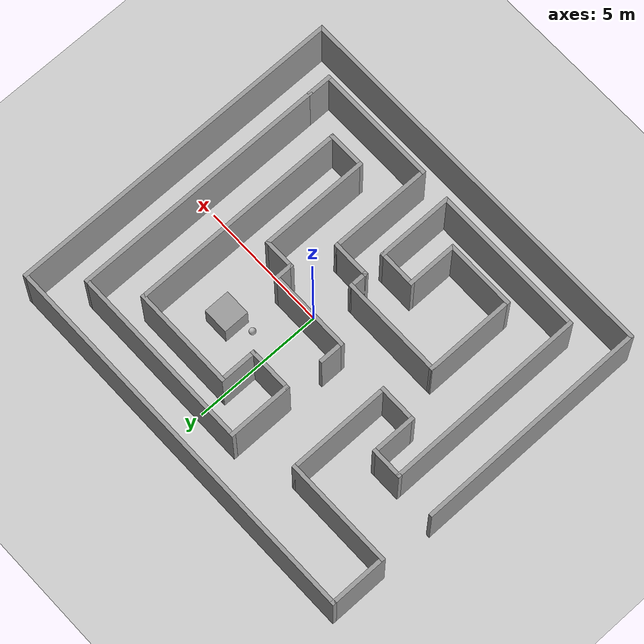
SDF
<sdf version="1.7">
 <world name="default">
  <light name="sun" type="directional">
   <pose>0 0 10 0 -0 0</pose>
   <diffuse>0.8 0.8 0.8 1</diffuse>
   <specular>0.2 0.2 0.2 1</specular>
   <attenuation>
    <range>1000</range>
    <constant>0.9</constant>
    <linear>0.01</linear>
    <quadratic>0.001</quadratic>
   </attenuation>
   <direction>-0.5 0.1 -0.9</direction>
   <spot><inner_angle>0</inner_angle><outer_angle>0</outer_angle><falloff>0</falloff></spot>
  </light>
  <model name="ground_plane">
   <static>1</static>
   <link name="link">
    <collision name="collision">
     <geometry><plane><normal>0 0 1</normal><size>100 100</size></plane></geometry>
     <surface>
      <contact><collide_bitmask>65535</collide_bitmask></contact>
      <friction><ode><mu>100</mu><mu2>50</mu2></ode></friction>
     </surface>
    </collision>
    <visual name="visual">
     <cast_shadows>0</cast_shadows>
     <geometry><plane><normal>0 0 1</normal><size>100 100</size></plane></geometry>
     <material>
      <script><uri>file://media/materials/scripts/gazebo.material</uri><name>Gazebo/Grey</name></script>
     </material>
    </visual>
   </link>
  </model>
  <gravity>0 0 -9.8</gravity>
  <magnetic_field>6e-06 2.3e-05 -4.2e-05</magnetic_field>
  <atmosphere type="adiabatic"/>
  <physics type="ode">
   <max_step_size>0.001</max_step_size>
   <real_time_factor>1</real_time_factor>
   <real_time_update_rate>1000</real_time_update_rate>
  </physics>
  <scene><ambient>0.4 0.4 0.4 1</ambient><background>0.7 0.7 0.7 1</background><shadows>1</shadows></scene>
  <spherical_coordinates>
   <surface_model>EARTH_WGS84</surface_model>
   <latitude_deg>0</latitude_deg>
   <longitude_deg>0</longitude_deg>
   <elevation>0</elevation>
   <heading_deg>0</heading_deg>
  </spherical_coordinates>
  <model name="test">
   <pose>-0.614659 -0.052239 0 0 -0 0</pose>
   <link name="Wall_10">
    <collision name="Wall_10_Collision">
     <geometry><box><size>4 0.15 2.5</size></box></geometry>
     <pose>0 0 1.25 0 -0 0</pose>
    </collision>
    <visual name="Wall_10_Visual">
     <pose>0 0 1.25 0 -0 0</pose>
     <geometry><box><size>4 0.15 2.5</size></box></geometry>
     <material>
      <script><uri>file://media/materials/scripts/gazebo.material</uri><name>Gazebo/Grey</name></script>
      <ambient>1 1 1 1</ambient>
     </material>
     <meta><layer>0</layer></meta>
    </visual>
    <pose>-3.325 2.525 0 0 -0 -1.5708</pose>
   </link>
   <link name="Wall_11">
    <collision name="Wall_11_Collision">
     <geometry><box><size>1.5 0.15 2.5</size></box></geometry>
     <pose>0 0 1.25 0 -0 0</pose>
    </collision>
    <visual name="Wall_11_Visual">
     <pose>0 0 1.25 0 -0 0</pose>
     <geometry><box><size>1.5 0.15 2.5</size></box></geometry>
     <material>
      <script><uri>file://media/materials/scripts/gazebo.material</uri><name>Gazebo/Grey</name></script>
      <ambient>1 1 1 1</ambient>
     </material>
     <meta><layer>0</layer></meta>
    </visual>
    <pose>-4 0.6 0 0 -0 3.14159</pose>
   </link>
   <link name="Wall_12">
    <collision name="Wall_12_Collision">
     <geometry><box><size>1.75 0.15 2.5</size></box></geometry>
     <pose>0 0 1.25 0 -0 0</pose>
    </collision>
    <visual name="Wall_12_Visual">
     <pose>0 0 1.25 0 -0 0</pose>
     <geometry><box><size>1.75 0.15 2.5</size></box></geometry>
     <material>
      <script><uri>file://media/materials/scripts/gazebo.material</uri><name>Gazebo/Grey</name></script>
      <ambient>1 1 1 1</ambient>
     </material>
     <meta><layer>0</layer></meta>
    </visual>
    <pose>-4.675 1.4 0 0 -0 1.5708</pose>
   </link>
   <link name="Wall_13">
    <collision name="Wall_13_Collision">
     <geometry><box><size>1.25 0.15 2.5</size></box></geometry>
     <pose>0 0 1.25 0 -0 0</pose>
    </collision>
    <visual name="Wall_13_Visual">
     <pose>0 0 1.25 0 -0 0</pose>
     <geometry><box><size>1.25 0.15 2.5</size></box></geometry>
     <material>
      <script><uri>file://media/materials/scripts/gazebo.material</uri><name>Gazebo/Grey</name></script>
      <ambient>1 1 1 1</ambient>
     </material>
     <meta><layer>0</layer></meta>
    </visual>
    <pose>-5.225 2.2 0 0 -0 3.14159</pose>
   </link>
   <link name="Wall_14">
    <collision name="Wall_14_Collision">
     <geometry><box><size>7.75 0.15 2.5</size></box></geometry>
     <pose>0 0 1.25 0 -0 0</pose>
    </collision>
    <visual name="Wall_14_Visual">
     <pose>0 0 1.25 0 -0 0</pose>
     <geometry><box><size>7.75 0.15 2.5</size></box></geometry>
     <material>
      <script><uri>file://media/materials/scripts/gazebo.material</uri><name>Gazebo/Grey</name></script>
      <ambient>1 1 1 1</ambient>
     </material>
     <meta><layer>0</layer></meta>
    </visual>
    <pose>-5.775 -1.6 0 0 -0 -1.5708</pose>
   </link>
   <link name="Wall_15">
    <collision name="Wall_15_Collision">
     <geometry><box><size>6 0.15 2.5</size></box></geometry>
     <pose>0 0 1.25 0 -0 0</pose>
    </collision>
    <visual name="Wall_15_Visual">
     <pose>0 0 1.25 0 -0 0</pose>
     <geometry><box><size>6 0.15 2.5</size></box></geometry>
     <material>
      <script><uri>file://media/materials/scripts/gazebo.material</uri><name>Gazebo/Grey</name></script>
      <ambient>1 1 1 1</ambient>
     </material>
     <meta><layer>0</layer></meta>
    </visual>
    <pose>-2.85 -5.4 0 0 -0 0</pose>
   </link>
   <link name="Wall_16">
    <collision name="Wall_16_Collision">
     <geometry><box><size>3 0.15 2.5</size></box></geometry>
     <pose>0 0 1.25 0 -0 0</pose>
    </collision>
    <visual name="Wall_16_Visual">
     <pose>0 0 1.25 0 -0 0</pose>
     <geometry><box><size>3 0.15 2.5</size></box></geometry>
     <material>
      <script><uri>file://media/materials/scripts/gazebo.material</uri><name>Gazebo/Grey</name></script>
      <ambient>1 1 1 1</ambient>
     </material>
     <meta><layer>0</layer></meta>
    </visual>
    <pose>0.075 -3.975 0 0 -0 1.5708</pose>
   </link>
   <link name="Wall_17">
    <collision name="Wall_17_Collision">
     <geometry><box><size>1.5 0.15 2.5</size></box></geometry>
     <pose>0 0 1.25 0 -0 0</pose>
    </collision>
    <visual name="Wall_17_Visual">
     <pose>0 0 1.25 0 -0 0</pose>
     <geometry><box><size>1.5 0.15 2.5</size></box></geometry>
     <material>
      <script><uri>file://media/materials/scripts/gazebo.material</uri><name>Gazebo/Grey</name></script>
      <ambient>1 1 1 1</ambient>
     </material>
     <meta><layer>0</layer></meta>
    </visual>
    <pose>-0.6 -2.55 0 0 -0 3.14159</pose>
   </link>
   <link name="Wall_18">
    <collision name="Wall_18_Collision">
     <geometry><box><size>2 0.15 2.5</size></box></geometry>
     <pose>0 0 1.25 0 -0 0</pose>
    </collision>
    <visual name="Wall_18_Visual">
     <pose>0 0 1.25 0 -0 0</pose>
     <geometry><box><size>2 0.15 2.5</size></box></geometry>
     <material>
      <script><uri>file://media/materials/scripts/gazebo.material</uri><name>Gazebo/Grey</name></script>
      <ambient>1 1 1 1</ambient>
     </material>
     <meta><layer>0</layer></meta>
    </visual>
    <pose>-1.275 -3.475 0 0 -0 -1.5708</pose>
   </link>
   <link name="Wall_19">
    <collision name="Wall_19_Collision">
     <geometry><box><size>2.75 0.15 2.5</size></box></geometry>
     <pose>0 0 1.25 0 -0 0</pose>
    </collision>
    <visual name="Wall_19_Visual">
     <pose>0 0 1.25 0 -0 0</pose>
     <geometry><box><size>2.75 0.15 2.5</size></box></geometry>
     <material>
      <script><uri>file://media/materials/scripts/gazebo.material</uri><name>Gazebo/Grey</name></script>
      <ambient>1 1 1 1</ambient>
     </material>
     <meta><layer>0</layer></meta>
    </visual>
    <pose>-2.575 -4.4 0 0 -0 3.14159</pose>
   </link>
   <link name="Wall_20">
    <collision name="Wall_20_Collision">
     <geometry><box><size>3.5 0.15 2.5</size></box></geometry>
     <pose>0 0 1.25 0 -0 0</pose>
    </collision>
    <visual name="Wall_20_Visual">
     <pose>0 0 1.25 0 -0 0</pose>
     <geometry><box><size>3.5 0.15 2.5</size></box></geometry>
     <material>
      <script><uri>file://media/materials/scripts/gazebo.material</uri><name>Gazebo/Grey</name></script>
      <ambient>1 1 1 1</ambient>
     </material>
     <meta><layer>0</layer></meta>
    </visual>
    <pose>-3.875 -2.725 0 0 -0 1.5708</pose>
   </link>
   <link name="Wall_21">
    <collision name="Wall_21_Collision">
     <geometry><box><size>4 0.15 2.5</size></box></geometry>
     <pose>0 0 1.25 0 -0 0</pose>
    </collision>
    <visual name="Wall_21_Visual">
     <pose>0 0 1.25 0 -0 0</pose>
     <geometry><box><size>4 0.15 2.5</size></box></geometry>
     <material>
      <script><uri>file://media/materials/scripts/gazebo.material</uri><name>Gazebo/Grey</name></script>
      <ambient>1 1 1 1</ambient>
     </material>
     <meta><layer>0</layer></meta>
    </visual>
    <pose>-1.95 -1.05 0 0 -0 0</pose>
   </link>
   <link name="Wall_22">
    <collision name="Wall_22_Collision">
     <geometry><box><size>0.75 0.15 2.5</size></box></geometry>
     <pose>0 0 1.25 0 -0 0</pose>
    </collision>
    <visual name="Wall_22_Visual">
     <pose>0 0 1.25 0 -0 0</pose>
     <geometry><box><size>0.75 0.15 2.5</size></box></geometry>
     <material>
      <script><uri>file://media/materials/scripts/gazebo.material</uri><name>Gazebo/Grey</name></script>
      <ambient>1 1 1 1</ambient>
     </material>
     <meta><layer>0</layer></meta>
    </visual>
    <pose>-0.025 -1.35 0 0 -0 -1.5708</pose>
   </link>
   <link name="Wall_23">
    <collision name="Wall_23_Collision">
     <geometry><box><size>1.5 0.15 2.5</size></box></geometry>
     <pose>0 0 1.25 0 -0 0</pose>
    </collision>
    <visual name="Wall_23_Visual">
     <pose>0 0 1.25 0 -0 0</pose>
     <geometry><box><size>1.5 0.15 2.5</size></box></geometry>
     <material>
      <script><uri>file://media/materials/scripts/gazebo.material</uri><name>Gazebo/Grey</name></script>
      <ambient>1 1 1 1</ambient>
     </material>
     <meta><layer>0</layer></meta>
    </visual>
    <pose>0.65 -1.65 0 0 -0 0</pose>
   </link>
   <link name="Wall_24">
    <collision name="Wall_24_Collision">
     <geometry><box><size>4 0.15 2.5</size></box></geometry>
     <pose>0 0 1.25 0 -0 0</pose>
    </collision>
    <visual name="Wall_24_Visual">
     <pose>0 0 1.25 0 -0 0</pose>
     <geometry><box><size>4 0.15 2.5</size></box></geometry>
     <material>
      <script><uri>file://media/materials/scripts/gazebo.material</uri><name>Gazebo/Grey</name></script>
      <ambient>1 1 1 1</ambient>
     </material>
     <meta><layer>0</layer></meta>
    </visual>
    <pose>1.325 -3.575 0 0 -0 -1.5708</pose>
   </link>
   <link name="Wall_25">
    <collision name="Wall_25_Collision">
     <geometry><box><size>4.75 0.15 2.5</size></box></geometry>
     <pose>0 0 1.25 0 -0 0</pose>
    </collision>
    <visual name="Wall_25_Visual">
     <pose>0 0 1.25 0 -0 0</pose>
     <geometry><box><size>4.75 0.15 2.5</size></box></geometry>
     <material>
      <script><uri>file://media/materials/scripts/gazebo.material</uri><name>Gazebo/Grey</name></script>
      <ambient>1 1 1 1</ambient>
     </material>
     <meta><layer>0</layer></meta>
    </visual>
    <pose>3.625 -5.5 0 0 -0 0</pose>
   </link>
   <link name="Wall_26">
    <collision name="Wall_26_Collision">
     <geometry><box><size>1 0.15 2.5</size></box></geometry>
     <pose>0 0 1.25 0 -0 0</pose>
    </collision>
    <visual name="Wall_26_Visual">
     <pose>0 0 1.25 0 -0 0</pose>
     <geometry><box><size>1 0.15 2.5</size></box></geometry>
     <material>
      <script><uri>file://media/materials/scripts/gazebo.material</uri><name>Gazebo/Grey</name></script>
      <ambient>1 1 1 1</ambient>
     </material>
     <meta><layer>0</layer></meta>
    </visual>
    <pose>5.925 -5.075 0 0 -0 1.5708</pose>
   </link>
   <link name="Wall_27">
    <collision name="Wall_27_Collision">
     <geometry><box><size>10 0.15 2.5</size></box></geometry>
     <pose>0 0 1.25 0 -0 0</pose>
    </collision>
    <visual name="Wall_27_Visual">
     <pose>0 0 1.25 0 -0 0</pose>
     <geometry><box><size>10 0.15 2.5</size></box></geometry>
     <material>
      <script><uri>file://media/materials/scripts/gazebo.material</uri><name>Gazebo/Grey</name></script>
      <ambient>1 1 1 1</ambient>
     </material>
     <meta><layer>0</layer></meta>
    </visual>
    <pose>5.925 0.275 0 0 -0 1.5708</pose>
   </link>
   <link name="Wall_28">
    <collision name="Wall_28_Collision">
     <geometry><box><size>7.25 0.15 2.5</size></box></geometry>
     <pose>0 0 1.25 0 -0 0</pose>
    </collision>
    <visual name="Wall_28_Visual">
     <pose>0 0 1.25 0 -0 0</pose>
     <geometry><box><size>7.25 0.15 2.5</size></box></geometry>
     <material>
      <script><uri>file://media/materials/scripts/gazebo.material</uri><name>Gazebo/Grey</name></script>
      <ambient>1 1 1 1</ambient>
     </material>
     <meta><layer>0</layer></meta>
    </visual>
    <pose>2.375 5.2 0 0 -0 3.14159</pose>
   </link>
   <link name="Wall_29">
    <collision name="Wall_29_Collision">
     <geometry><box><size>2.5 0.15 2.5</size></box></geometry>
     <pose>0 0 1.25 0 -0 0</pose>
    </collision>
    <visual name="Wall_29_Visual">
     <pose>0 0 1.25 0 -0 0</pose>
     <geometry><box><size>2.5 0.15 2.5</size></box></geometry>
     <material>
      <script><uri>file://media/materials/scripts/gazebo.material</uri><name>Gazebo/Grey</name></script>
      <ambient>1 1 1 1</ambient>
     </material>
     <meta><layer>0</layer></meta>
    </visual>
    <pose>-1.175 4.025 0 0 -0 -1.5708</pose>
   </link>
   <link name="Wall_30">
    <collision name="Wall_30_Collision">
     <geometry><box><size>1.75 0.15 2.5</size></box></geometry>
     <pose>0 0 1.25 0 -0 0</pose>
    </collision>
    <visual name="Wall_30_Visual">
     <pose>0 0 1.25 0 -0 0</pose>
     <geometry><box><size>1.75 0.15 2.5</size></box></geometry>
     <material>
      <script><uri>file://media/materials/scripts/gazebo.material</uri><name>Gazebo/Grey</name></script>
      <ambient>1 1 1 1</ambient>
     </material>
     <meta><layer>0</layer></meta>
    </visual>
    <pose>-0.375 2.85 0 0 -0 0</pose>
   </link>
   <link name="Wall_31">
    <collision name="Wall_31_Collision">
     <geometry><box><size>1.5 0.15 2.5</size></box></geometry>
     <pose>0 0 1.25 0 -0 0</pose>
    </collision>
    <visual name="Wall_31_Visual">
     <pose>0 0 1.25 0 -0 0</pose>
     <geometry><box><size>1.5 0.15 2.5</size></box></geometry>
     <material>
      <script><uri>file://media/materials/scripts/gazebo.material</uri><name>Gazebo/Grey</name></script>
      <ambient>1 1 1 1</ambient>
     </material>
     <meta><layer>0</layer></meta>
    </visual>
    <pose>0.425 3.525 0 0 -0 1.5708</pose>
   </link>
   <link name="Wall_32">
    <collision name="Wall_32_Collision">
     <geometry><box><size>4 0.15 2.5</size></box></geometry>
     <pose>0 0 1.25 0 -0 0</pose>
    </collision>
    <visual name="Wall_32_Visual">
     <pose>0 0 1.25 0 -0 0</pose>
     <geometry><box><size>4 0.15 2.5</size></box></geometry>
     <material>
      <script><uri>file://media/materials/scripts/gazebo.material</uri><name>Gazebo/Grey</name></script>
      <ambient>1 1 1 1</ambient>
     </material>
     <meta><layer>0</layer></meta>
    </visual>
    <pose>2.35 4.2 0 0 -0 0</pose>
   </link>
   <link name="Wall_33">
    <collision name="Wall_33_Collision">
     <geometry><box><size>8.5 0.15 2.5</size></box></geometry>
     <pose>0 0 1.25 0 -0 0</pose>
    </collision>
    <visual name="Wall_33_Visual">
     <pose>0 0 1.25 0 -0 0</pose>
     <geometry><box><size>8.5 0.15 2.5</size></box></geometry>
     <material>
      <script><uri>file://media/materials/scripts/gazebo.material</uri><name>Gazebo/Grey</name></script>
      <ambient>1 1 1 1</ambient>
     </material>
     <meta><layer>0</layer></meta>
    </visual>
    <pose>4.275 0.025 0 0 -0 -1.5708</pose>
   </link>
   <link name="Wall_34">
    <collision name="Wall_34_Collision">
     <geometry><box><size>1.5 0.15 2.5</size></box></geometry>
     <pose>0 0 1.25 0 -0 0</pose>
    </collision>
    <visual name="Wall_34_Visual">
     <pose>0 0 1.25 0 -0 0</pose>
     <geometry><box><size>1.5 0.15 2.5</size></box></geometry>
     <material>
      <script><uri>file://media/materials/scripts/gazebo.material</uri><name>Gazebo/Grey</name></script>
      <ambient>1 1 1 1</ambient>
     </material>
     <meta><layer>0</layer></meta>
    </visual>
    <pose>3.6 -4.15 0 0 -0 3.14159</pose>
   </link>
   <link name="Wall_35">
    <collision name="Wall_35_Collision">
     <geometry><box><size>4.25 0.15 2.5</size></box></geometry>
     <pose>0 0 1.25 0 -0 0</pose>
    </collision>
    <visual name="Wall_35_Visual">
     <pose>0 0 1.25 0 -0 0</pose>
     <geometry><box><size>4.25 0.15 2.5</size></box></geometry>
     <material>
      <script><uri>file://media/materials/scripts/gazebo.material</uri><name>Gazebo/Grey</name></script>
      <ambient>1 1 1 1</ambient>
     </material>
     <meta><layer>0</layer></meta>
    </visual>
    <pose>2.925 -2.1 0 0 -0 1.5708</pose>
   </link>
   <link name="Wall_36">
    <collision name="Wall_36_Collision">
     <geometry><box><size>1.25 0.15 2.5</size></box></geometry>
     <pose>0 0 1.25 0 -0 0</pose>
    </collision>
    <visual name="Wall_36_Visual">
     <pose>0 0 1.25 0 -0 0</pose>
     <geometry><box><size>1.25 0.15 2.5</size></box></geometry>
     <material>
      <script><uri>file://media/materials/scripts/gazebo.material</uri><name>Gazebo/Grey</name></script>
      <ambient>1 1 1 1</ambient>
     </material>
     <meta><layer>0</layer></meta>
    </visual>
    <pose>2.375 -0.05 0 0 -0 3.14159</pose>
   </link>
   <link name="Wall_37">
    <collision name="Wall_37_Collision">
     <geometry><box><size>0.75 0.15 2.5</size></box></geometry>
     <pose>0 0 1.25 0 -0 0</pose>
    </collision>
    <visual name="Wall_37_Visual">
     <pose>0 0 1.25 0 -0 0</pose>
     <geometry><box><size>0.75 0.15 2.5</size></box></geometry>
     <material>
      <script><uri>file://media/materials/scripts/gazebo.material</uri><name>Gazebo/Grey</name></script>
      <ambient>1 1 1 1</ambient>
     </material>
     <meta><layer>0</layer></meta>
    </visual>
    <pose>1.825 0.25 0 0 -0 1.5708</pose>
   </link>
   <link name="Wall_38">
    <collision name="Wall_38_Collision">
     <geometry><box><size>3.25 0.15 2.5</size></box></geometry>
     <pose>0 0 1.25 0 -0 0</pose>
    </collision>
    <visual name="Wall_38_Visual">
     <pose>0 0 1.25 0 -0 0</pose>
     <geometry><box><size>3.25 0.15 2.5</size></box></geometry>
     <material>
      <script><uri>file://media/materials/scripts/gazebo.material</uri><name>Gazebo/Grey</name></script>
      <ambient>1 1 1 1</ambient>
     </material>
     <meta><layer>0</layer></meta>
    </visual>
    <pose>0.275 0.55 0 0 -0 3.14159</pose>
   </link>
   <link name="Wall_39">
    <collision name="Wall_39_Collision">
     <geometry><box><size>1 0.15 2.5</size></box></geometry>
     <pose>0 0 1.25 0 -0 0</pose>
    </collision>
    <visual name="Wall_39_Visual">
     <pose>0 0 1.25 0 -0 0</pose>
     <geometry><box><size>1 0.15 2.5</size></box></geometry>
     <material>
      <script><uri>file://media/materials/scripts/gazebo.material</uri><name>Gazebo/Grey</name></script>
      <ambient>1 1 1 1</ambient>
     </material>
     <meta><layer>0</layer></meta>
    </visual>
    <pose>-1.275 0.975 0 0 -0 1.5708</pose>
   </link>
   <link name="Wall_4">
    <collision name="Wall_4_Collision">
     <geometry><box><size>9 0.15 2.5</size></box></geometry>
     <pose>0 0 1.25 0 -0 0</pose>
    </collision>
    <visual name="Wall_4_Visual">
     <pose>0 0 1.25 0 -0 0</pose>
     <geometry><box><size>9 0.15 2.5</size></box></geometry>
     <material>
      <script><uri>file://media/materials/scripts/gazebo.material</uri><name>Gazebo/Grey</name></script>
      <ambient>1 1 1 1</ambient>
     </material>
     <meta><layer>0</layer></meta>
    </visual>
    <pose>-7.425 -2.125 0 0 -0 -1.5708</pose>
   </link>
   <link name="Wall_5">
    <collision name="Wall_5_Collision">
     <geometry><box><size>15 0.15 2.5</size></box></geometry>
     <pose>0 0 1.25 0 -0 0</pose>
    </collision>
    <visual name="Wall_5_Visual">
     <pose>0 0 1.25 0 -0 0</pose>
     <geometry><box><size>15 0.15 2.5</size></box></geometry>
     <material>
      <script><uri>file://media/materials/scripts/gazebo.material</uri><name>Gazebo/Grey</name></script>
      <ambient>1 1 1 1</ambient>
     </material>
     <meta><layer>0</layer></meta>
    </visual>
    <pose>0 -6.55 0 0 -0 0</pose>
   </link>
   <link name="Wall_6">
    <collision name="Wall_6_Collision">
     <geometry><box><size>13.25 0.15 2.5</size></box></geometry>
     <pose>0 0 1.25 0 -0 0</pose>
    </collision>
    <visual name="Wall_6_Visual">
     <pose>0 0 1.25 0 -0 0</pose>
     <geometry><box><size>13.25 0.15 2.5</size></box></geometry>
     <material>
      <script><uri>file://media/materials/scripts/gazebo.material</uri><name>Gazebo/Grey</name></script>
      <ambient>1 1 1 1</ambient>
     </material>
     <meta><layer>0</layer></meta>
    </visual>
    <pose>7.425 -0 0 0 -0 1.5708</pose>
   </link>
   <link name="Wall_7">
    <collision name="Wall_7_Collision">
     <geometry><box><size>15 0.15 2.5</size></box></geometry>
     <pose>0 0 1.25 0 -0 0</pose>
    </collision>
    <visual name="Wall_7_Visual">
     <pose>0 0 1.25 0 -0 0</pose>
     <geometry><box><size>15 0.15 2.5</size></box></geometry>
     <material>
      <script><uri>file://media/materials/scripts/gazebo.material</uri><name>Gazebo/Grey</name></script>
      <ambient>1 1 1 1</ambient>
     </material>
     <meta><layer>0</layer></meta>
    </visual>
    <pose>0 6.55 0 0 -0 3.14159</pose>
   </link>
   <link name="Wall_8">
    <collision name="Wall_8_Collision">
     <geometry><box><size>2.25 0.15 2.5</size></box></geometry>
     <pose>0 0 1.25 0 -0 0</pose>
    </collision>
    <visual name="Wall_8_Visual">
     <pose>0 0 1.25 0 -0 0</pose>
     <geometry><box><size>2.25 0.15 2.5</size></box></geometry>
     <material>
      <script><uri>file://media/materials/scripts/gazebo.material</uri><name>Gazebo/Grey</name></script>
      <ambient>1 1 1 1</ambient>
     </material>
     <meta><layer>0</layer></meta>
    </visual>
    <pose>-7.425 5.5 0 0 -0 -1.5708</pose>
   </link>
   <link name="Wall_9">
    <collision name="Wall_9_Collision">
     <geometry><box><size>4.25 0.15 2.5</size></box></geometry>
     <pose>0 0 1.25 0 -0 0</pose>
    </collision>
    <visual name="Wall_9_Visual">
     <pose>0 0 1.25 0 -0 0</pose>
     <geometry><box><size>4.25 0.15 2.5</size></box></geometry>
     <material>
      <script><uri>file://media/materials/scripts/gazebo.material</uri><name>Gazebo/Grey</name></script>
      <ambient>1 1 1 1</ambient>
     </material>
     <meta><layer>0</layer></meta>
    </visual>
    <pose>-5.375 4.45 0 0 -0 0</pose>
   </link>
   <static>1</static>
  </model>
  <model name="unit_box">
   <pose>1.86412 2.19947 0.5 0 -0 0</pose>
   <link name="link">
    <inertial>
     <mass>1</mass>
     <inertia>
      <ixx>0.166667</ixx>
      <ixy>0</ixy>
      <ixz>0</ixz>
      <iyy>0.166667</iyy>
      <iyz>0</iyz>
      <izz>0.166667</izz>
     </inertia>
    </inertial>
    <collision name="collision"><geometry><box><size>1 1 1</size></box></geometry></collision>
    <visual name="visual">
     <geometry><box><size>1 1 1</size></box></geometry>
     <material>
      <script><name>Gazebo/Grey</name><uri>file://media/materials/scripts/gazebo.material</uri></script>
     </material>
    </visual>
   </link>
  </model>
  <model name="frc2016_ball">
   <pose>1.00902 1.83399 0.127 0 -0 0</pose>
   <link name="link">
    <inertial>
     <mass>0.213</mass>
     <inertia>
      <ixx>0.00322667</ixx>
      <ixy>0</ixy>
      <ixz>0</ixz>
      <iyy>0.00322667</iyy>
      <iyz>0</iyz>
      <izz>0.00322667</izz>
     </inertia>
    </inertial>
    <visual name="visual"><geometry><sphere><radius>0.127</radius></sphere></geometry></visual>
    <collision name="collision">
     <geometry><sphere><radius>0.127</radius></sphere></geometry>
     <surface>
      <bounce><restitution_coefficient>0.15937</restitution_coefficient><threshold>0</threshold></bounce>
      <contact><ode><max_vel>100</max_vel><min_depth>0.001</min_depth></ode></contact>
     </surface>
    </collision>
   </link>
  </model>
 </world>
</sdf>
